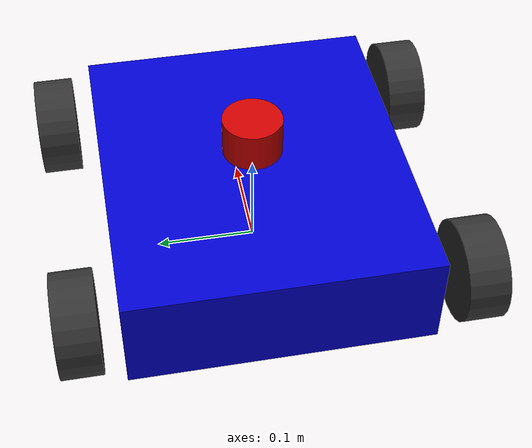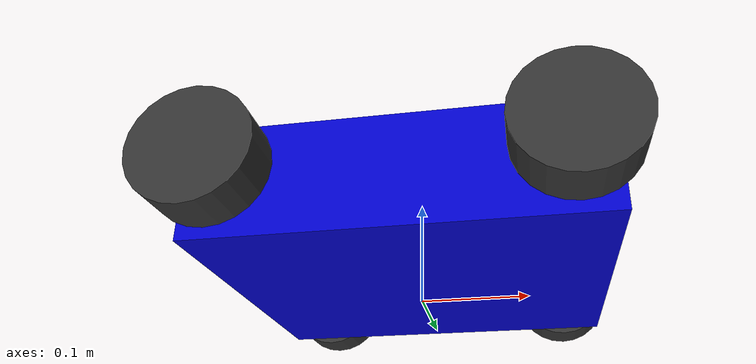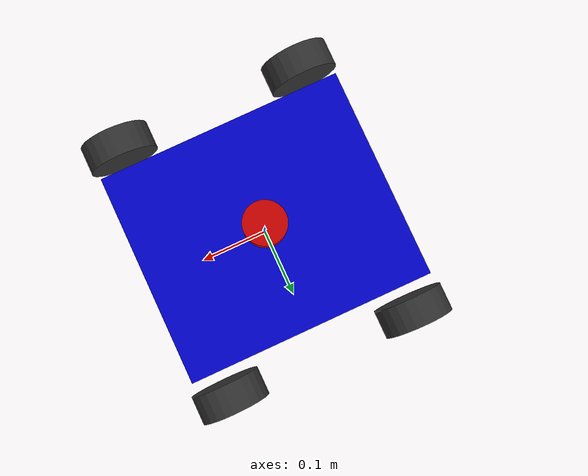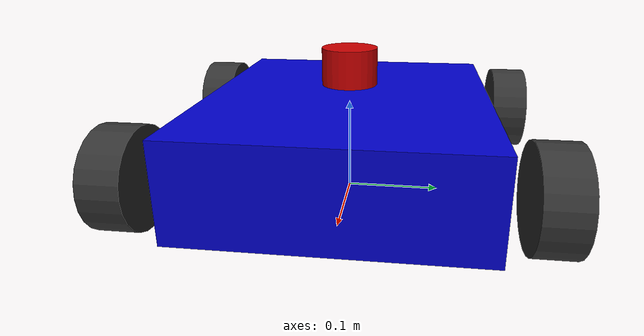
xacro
<?xml version="1.0"?>
<robot xmlns:xacro="http://www.ros.org/wiki/xacro" name="mecanum_maze_robot">

  <!-- ==================== Properties ==================== -->
  <xacro:property name="chassis_length" value="0.35"/>
  <xacro:property name="chassis_width" value="0.30"/>
  <xacro:property name="chassis_height" value="0.10"/>
  <xacro:property name="chassis_mass" value="5.0"/>

  <xacro:property name="wheel_radius" value="0.05"/>
  <xacro:property name="wheel_width" value="0.04"/>
  <xacro:property name="wheel_mass" value="0.5"/>
  <xacro:property name="wheel_separation_x" value="0.14"/>
  <xacro:property name="wheel_separation_y" value="0.17"/>

  <xacro:property name="lidar_height" value="0.04"/>
  <xacro:property name="lidar_radius" value="0.03"/>

  <!-- ==================== Macros ==================== -->
  <xacro:macro name="box_inertia" params="m x y z">
    <inertial>
      <mass value="${m}"/>
      <inertia
        ixx="${m*(y*y+z*z)/12}" ixy="0" ixz="0"
        iyy="${m*(x*x+z*z)/12}" iyz="0"
        izz="${m*(x*x+y*y)/12}"/>
    </inertial>
  </xacro:macro>

  <xacro:macro name="cylinder_inertia" params="m r h">
    <inertial>
      <mass value="${m}"/>
      <inertia
        ixx="${m*(3*r*r+h*h)/12}" ixy="0" ixz="0"
        iyy="${m*(3*r*r+h*h)/12}" iyz="0"
        izz="${m*r*r/2}"/>
    </inertial>
  </xacro:macro>

  <xacro:macro name="mecanum_wheel" params="name x y z roll">
    <link name="${name}_link">
      <visual>
        <geometry>
          <cylinder radius="${wheel_radius}" length="${wheel_width}"/>
        </geometry>
        <material name="dark_gray">
          <color rgba="0.2 0.2 0.2 1"/>
        </material>
      </visual>
      <collision>
        <geometry>
          <cylinder radius="${wheel_radius}" length="${wheel_width}"/>
        </geometry>
        <surface>
          <friction>
            <ode>
              <mu>1.0</mu>
              <mu2>0.5</mu2>
              <slip1>0.001</slip1>
              <slip2>0.001</slip2>
            </ode>
          </friction>
        </surface>
      </collision>
      <xacro:cylinder_inertia m="${wheel_mass}" r="${wheel_radius}" h="${wheel_width}"/>
    </link>

    <joint name="${name}_joint" type="continuous">
      <parent link="base_link"/>
      <child link="${name}_link"/>
      <origin xyz="${x} ${y} ${z}" rpy="${roll} 0 0"/>
      <axis xyz="0 0 1"/>
      <dynamics damping="0.01" friction="0.01"/>
    </joint>
  </xacro:macro>

  <!-- ==================== Base Link ==================== -->
  <link name="base_footprint"/>

  <link name="base_link">
    <visual>
      <geometry>
        <box size="${chassis_length} ${chassis_width} ${chassis_height}"/>
      </geometry>
      <material name="blue">
        <color rgba="0.0 0.0 0.8 1"/>
      </material>
    </visual>
    <collision>
      <geometry>
        <box size="${chassis_length} ${chassis_width} ${chassis_height}"/>
      </geometry>
    </collision>
    <xacro:box_inertia m="${chassis_mass}" x="${chassis_length}" y="${chassis_width}" z="${chassis_height}"/>
  </link>

  <joint name="base_footprint_joint" type="fixed">
    <parent link="base_footprint"/>
    <child link="base_link"/>
    <origin xyz="0 0 ${wheel_radius + 0.01}" rpy="0 0 0"/>
  </joint>

  <!-- ==================== Wheels ==================== -->
  <!-- Front Left -->
  <xacro:mecanum_wheel name="front_left_wheel"
    x="${wheel_separation_x}" y="${wheel_separation_y + wheel_width/2}"
    z="0" roll="${-pi/2}"/>

  <!-- Front Right -->
  <xacro:mecanum_wheel name="front_right_wheel"
    x="${wheel_separation_x}" y="${-(wheel_separation_y + wheel_width/2)}"
    z="0" roll="${pi/2}"/>

  <!-- Rear Left -->
  <xacro:mecanum_wheel name="rear_left_wheel"
    x="${-wheel_separation_x}" y="${wheel_separation_y + wheel_width/2}"
    z="0" roll="${-pi/2}"/>

  <!-- Rear Right -->
  <xacro:mecanum_wheel name="rear_right_wheel"
    x="${-wheel_separation_x}" y="${-(wheel_separation_y + wheel_width/2)}"
    z="0" roll="${pi/2}"/>

  <!-- ==================== LiDAR Sensor ==================== -->
  <link name="lidar_link">
    <visual>
      <geometry>
        <cylinder radius="${lidar_radius}" length="${lidar_height}"/>
      </geometry>
      <material name="red">
        <color rgba="0.8 0.0 0.0 1"/>
      </material>
    </visual>
    <collision>
      <geometry>
        <cylinder radius="${lidar_radius}" length="${lidar_height}"/>
      </geometry>
    </collision>
    <inertial>
      <mass value="0.1"/>
      <inertia ixx="0.0001" iyy="0.0001" izz="0.0001" ixy="0" ixz="0" iyz="0"/>
    </inertial>
  </link>

  <joint name="lidar_joint" type="fixed">
    <parent link="base_link"/>
    <child link="lidar_link"/>
    <origin xyz="0 0 ${chassis_height/2 + lidar_height/2 + 0.01}" rpy="0 0 0"/>
  </joint>

  <!-- Gazebo LiDAR sensor plugin -->
  <gazebo reference="lidar_link">
    <sensor name="lidar" type="gpu_lidar">
      <topic>/scan</topic>
      <update_rate>10</update_rate>
      <lidar>
        <scan>
          <horizontal>
            <samples>360</samples>
            <resolution>1</resolution>
            <min_angle>-3.14159</min_angle>
            <max_angle>3.14159</max_angle>
          </horizontal>
        </scan>
        <range>
          <min>0.12</min>
          <max>10.0</max>
          <resolution>0.01</resolution>
        </range>
        <noise>
          <type>gaussian</type>
          <mean>0.0</mean>
          <stddev>0.005</stddev>
        </noise>
      </lidar>
      <always_on>true</always_on>
      <visualize>false</visualize>
    </sensor>
  </gazebo>

  <!-- ==================== IMU Sensor ==================== -->
  <link name="imu_link">
    <inertial>
      <mass value="0.01"/>
      <inertia ixx="0.00001" iyy="0.00001" izz="0.00001" ixy="0" ixz="0" iyz="0"/>
    </inertial>
  </link>

  <joint name="imu_joint" type="fixed">
    <parent link="base_link"/>
    <child link="imu_link"/>
    <origin xyz="0 0 0" rpy="0 0 0"/>
  </joint>

  <gazebo reference="imu_link">
    <sensor name="imu" type="imu">
      <topic>/imu</topic>
      <update_rate>100</update_rate>
      <always_on>true</always_on>
      <imu>
        <angular_velocity>
          <x><noise type="gaussian"><mean>0</mean><stddev>0.001</stddev></noise></x>
          <y><noise type="gaussian"><mean>0</mean><stddev>0.001</stddev></noise></y>
          <z><noise type="gaussian"><mean>0</mean><stddev>0.001</stddev></noise></z>
        </angular_velocity>
        <linear_acceleration>
          <x><noise type="gaussian"><mean>0</mean><stddev>0.01</stddev></noise></x>
          <y><noise type="gaussian"><mean>0</mean><stddev>0.01</stddev></noise></y>
          <z><noise type="gaussian"><mean>0</mean><stddev>0.01</stddev></noise></z>
        </linear_acceleration>
      </imu>
    </sensor>
  </gazebo>

  <!-- ==================== Gazebo Plugins ==================== -->

  <gazebo>
    <plugin filename="ignition-gazebo-velocity-control-system"
            name="ignition::gazebo::systems::VelocityControl">
    </plugin>
  </gazebo>

  <gazebo>
    <plugin filename="ignition-gazebo-odometry-publisher-system"
            name="ignition::gazebo::systems::OdometryPublisher">
      <odom_frame>odom</odom_frame>
      <robot_base_frame>base_footprint</robot_base_frame>
      <odom_publish_frequency>50</odom_publish_frequency>
      <dimensions>2</dimensions>
      <odom_topic>/odom</odom_topic>
    </plugin>
  </gazebo>

  <!-- Joint State Publisher -->
  <gazebo>
    <plugin filename="ignition-gazebo-joint-state-publisher-system"
            name="ignition::gazebo::systems::JointStatePublisher">
      <joint_name>front_left_wheel_joint</joint_name>
      <joint_name>front_right_wheel_joint</joint_name>
      <joint_name>rear_left_wheel_joint</joint_name>
      <joint_name>rear_right_wheel_joint</joint_name>
    </plugin>
  </gazebo>

  <!-- (Chase camera attempt removed — URDF-attached camera disrupted Nav2 TF tree.
       Follow view is now provided by a static low-angle camera in warehouse_cam.sdf.) -->

</robot>
